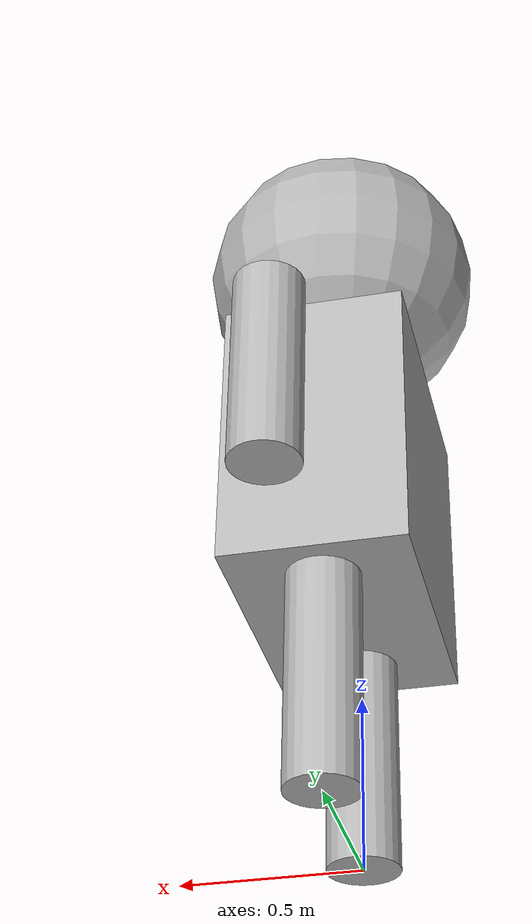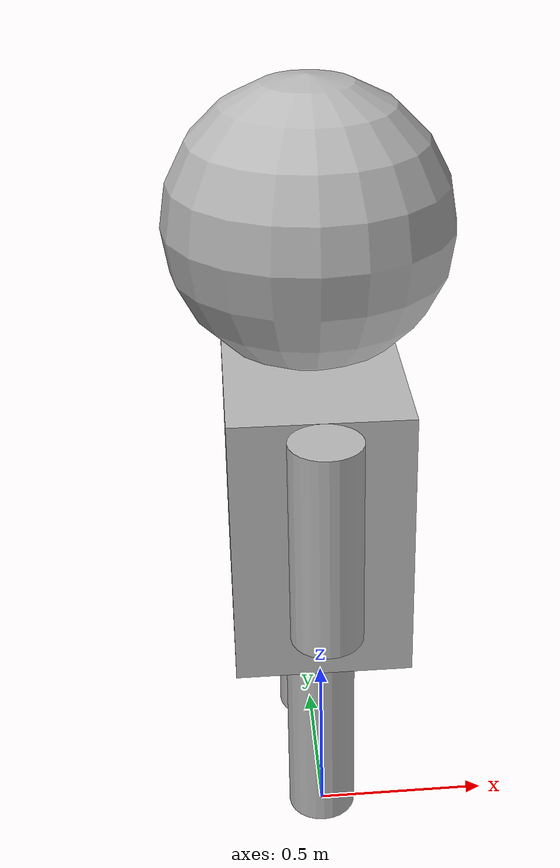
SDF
<?xml version='1.0'?>
<sdf version='1.4'>
  <model name="robot">
 <static>true</static>
          <link name='right leg'>
           <pose>0 0 0.3 0 0 0</pose>

            <collision name='collision'>
              <geometry>
                <cylinder>
                  <radius>.1</radius>
		  <length>.6</length>
                </cylinder>
              </geometry>
            </collision>

            <visual name='visual'>
             <geometry>
                <cylinder>
                  <radius>.1</radius>
		  <length>.6</length>
                </cylinder>
              </geometry>
            </visual>
          </link>

<link name='body'>
           <pose>0 0.25 1 0 0 0</pose>

            <collision name='collision'>
              <geometry>
                <box>
                  <size>0.5 0.8 0.8</size>
                </box>
              </geometry>
            </collision>

            <visual name='visual'>
            <geometry>
                <box>
                  <size>0.5 0.8 0.8</size>
                </box>
              </geometry>
            </visual>
          </link>

<link name='right hand'>
           <pose>0 -0.25 1.1 0 0 0</pose>

            <collision name='collision'>
              <geometry>
                <cylinder>
                  <radius>.1</radius>
		  <length>.6</length>
                </cylinder>
              </geometry>
            </collision>

            <visual name='visual'>
            <geometry>
                <cylinder>
                  <radius>.1</radius>
		  <length>.6</length>
                </cylinder>
              </geometry>
            </visual>
          </link>

<link name='left hand'>
           <pose>0.1 0.75 1.1 0 0 0</pose>

            <collision name='collision'>
              <geometry>
                <cylinder>
                  <radius>.1</radius>
		  <length>.6</length>
                </cylinder>
              </geometry>
            </collision>

            <visual name='visual'>
            <geometry>
                <cylinder>
                  <radius>.1</radius>
		  <length>.6</length>
                </cylinder>
              </geometry>
            </visual>
          </link>

<link name='head'>
           <pose>0 0.25 1.8 0 0 0</pose>

            <collision name='collision'>
              <geometry>

<sphere>
<radius>.4</radius>
</sphere>
              </geometry>
            </collision>

            <visual name='visual'>
            <geometry>
                <sphere>
<radius>.4</radius>
</sphere>
              </geometry>
            </visual>
          </link>

 <link name='left leg'>
            <pose>0 0.5 0.3 0 0 0</pose>

            <collision name='collision'>
              <geometry>
                <cylinder>
                  <radius>.1</radius>
		  <length>.6</length>
                </cylinder>
              </geometry>
            </collision>

            <visual name='visual'>
             <geometry>
                <cylinder>
                  <radius>.1</radius>
		  <length>.6</length>
                </cylinder>
              </geometry>
            </visual>
          </link>
  </model>
</sdf>
